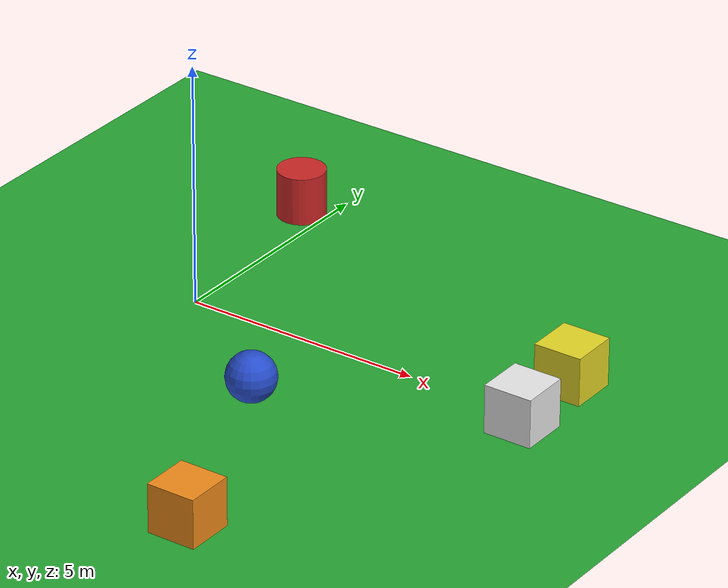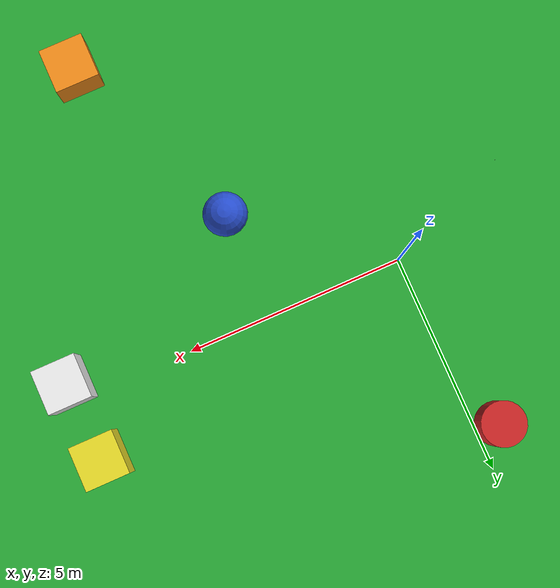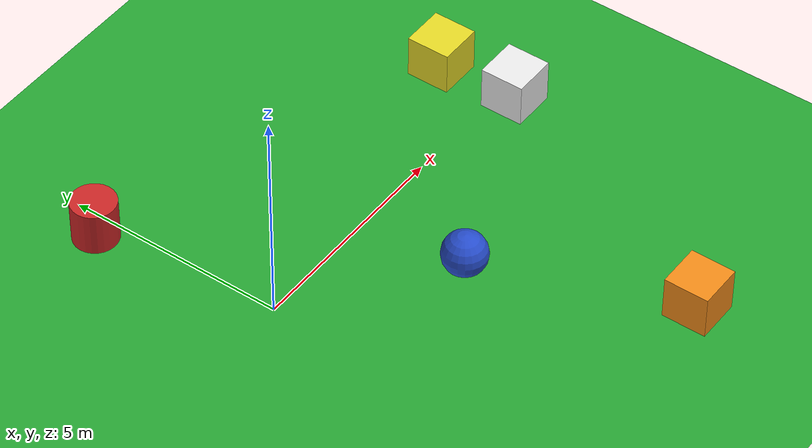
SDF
<sdf version="1.6">
 <world name="default">
  <light name="sun" type="directional">
   <pose>0 0 10 0 -0 0</pose>
   <diffuse>0.8 0.8 0.8 1</diffuse>
   <specular>0.2 0.2 0.2 1</specular>
   <attenuation>
    <range>1000</range>
    <constant>0.9</constant>
    <linear>0.01</linear>
    <quadratic>0.001</quadratic>
   </attenuation>
   <direction>-0.5 0.1 -0.9</direction>
  </light>
  <model name="ground_plane">
   <static>1</static>
   <link name="link">
    <collision name="collision">
     <geometry><plane><normal>0 0 1</normal><size>100 100</size></plane></geometry>
     <surface><friction><ode><mu>100</mu><mu2>50</mu2></ode></friction></surface>
    </collision>
    <visual name="visual">
     <cast_shadows>0</cast_shadows>
     <geometry><plane><normal>0 0 1</normal><size>100 100</size></plane></geometry>
     <material>
      <script><uri>file://media/materials/scripts/gazebo.material</uri><name>Gazebo/GreenTransparent</name></script>
     </material>
    </visual>
   </link>
  </model>
  <gravity>0 0 -9.8</gravity>
  <magnetic_field>6e-06 2.3e-05 -4.2e-05</magnetic_field>
  <atmosphere type="adiabatic"/>
  <physics name="default_physics" default="0" type="ode">
   <max_step_size>0.001</max_step_size>
   <real_time_factor>1</real_time_factor>
   <real_time_update_rate>1000</real_time_update_rate>
  </physics>
  <scene><ambient>0.4 0.4 0.4 1</ambient><background>0.7 0.7 0.7 1</background><shadows>1</shadows></scene>
  <spherical_coordinates>
   <surface_model>EARTH_WGS84</surface_model>
   <latitude_deg>0</latitude_deg>
   <longitude_deg>0</longitude_deg>
   <elevation>0</elevation>
   <heading_deg>0</heading_deg>
  </spherical_coordinates>
  <model name="unit_box">
   <pose>7.7656 -0.417065 0.499995 1e-05 -0 0</pose>
   <link name="link">
    <inertial>
     <mass>1</mass>
     <inertia>
      <ixx>0.166667</ixx>
      <ixy>0</ixy>
      <ixz>0</ixz>
      <iyy>0.166667</iyy>
      <iyz>0</iyz>
      <izz>0.166667</izz>
     </inertia>
    </inertial>
    <collision name="collision"><geometry><box><size>1 1 1</size></box></geometry></collision>
    <visual name="visual">
     <geometry><box><size>1 1 1</size></box></geometry>
     <material>
      <script><name>Gazebo/White</name><uri>file://media/materials/scripts/gazebo.material</uri></script>
     </material>
    </visual>
   </link>
  </model>
  <model name="unit_sphere">
   <pose>3.10555 -2.42286 0.5 0 -0 0</pose>
   <link name="link">
    <inertial>
     <mass>1</mass>
     <inertia><ixx>0.1</ixx><ixy>0</ixy><ixz>0</ixz><iyy>0.1</iyy><iyz>0</iyz><izz>0.1</izz></inertia>
    </inertial>
    <collision name="collision"><geometry><sphere><radius>0.5</radius></sphere></geometry></collision>
    <visual name="visual">
     <geometry><sphere><radius>0.5</radius></sphere></geometry>
     <material>
      <script><name>Gazebo/Blue</name><uri>file://media/materials/scripts/gazebo.material</uri></script>
     </material>
    </visual>
   </link>
  </model>
  <model name="unit_cylinder">
   <pose>-0.485612 4.15169 0.499998 3e-06 -3e-06 0</pose>
   <link name="link">
    <inertial>
     <mass>1</mass>
     <inertia><ixx>0.145833</ixx><ixy>0</ixy><ixz>0</ixz><iyy>0.145833</iyy><iyz>0</iyz><izz>0.125</izz></inertia>
    </inertial>
    <collision name="collision">
     <geometry><cylinder><radius>0.5</radius><length>1</length></cylinder></geometry>
    </collision>
    <visual name="visual">
     <geometry><cylinder><radius>0.5</radius><length>1</length></cylinder></geometry>
     <material>
      <script><name>Gazebo/Red</name><uri>file://media/materials/scripts/gazebo.material</uri></script>
     </material>
    </visual>
   </link>
  </model>
  <model name="unit_box_0">
   <pose>4.90347 -6.7771 0.499995 1e-05 -0 0</pose>
   <link name="link">
    <inertial>
     <mass>1</mass>
     <inertia>
      <ixx>0.166667</ixx>
      <ixy>0</ixy>
      <ixz>0</ixz>
      <iyy>0.166667</iyy>
      <iyz>0</iyz>
      <izz>0.166667</izz>
     </inertia>
    </inertial>
    <collision name="collision"><geometry><box><size>1 1 1</size></box></geometry></collision>
    <visual name="visual">
     <geometry><box><size>1 1 1</size></box></geometry>
     <material>
      <script><name>Gazebo/Orange</name><uri>file://media/materials/scripts/gazebo.material</uri></script>
     </material>
    </visual>
   </link>
  </model>
  <model name="unit_box_1">
   <pose>7.65972 1.39101 0.5 0 -0 0</pose>
   <link name="link">
    <inertial>
     <mass>1</mass>
     <inertia>
      <ixx>0.166667</ixx>
      <ixy>0</ixy>
      <ixz>0</ixz>
      <iyy>0.166667</iyy>
      <iyz>0</iyz>
      <izz>0.166667</izz>
     </inertia>
    </inertial>
    <collision name="collision"><geometry><box><size>1 1 1</size></box></geometry></collision>
    <visual name="visual">
     <geometry><box><size>1 1 1</size></box></geometry>
     <material>
      <script><name>Gazebo/Yellow</name><uri>file://media/materials/scripts/gazebo.material</uri></script>
     </material>
    </visual>
   </link>
  </model>
  <model name="ball_bearing">
   <link name="link">
    <pose>0 0 0.003 0 -0 0</pose>
    <inertial>
     <mass>0.0011</mass>
     <inertia>
      <ixx>3.96e-09</ixx>
      <ixy>0</ixy>
      <ixz>0</ixz>
      <iyy>3.96e-09</iyy>
      <iyz>0</iyz>
      <izz>3.96e-09</izz>
     </inertia>
    </inertial>
    <collision name="collision">
     <geometry><sphere><radius>0.003</radius></sphere></geometry>
     <surface>
      <contact>
       <poissons_ratio>0.305</poissons_ratio>
       <elastic_modulus>2e+11</elastic_modulus>
       <ode><kp>100000</kp><kd>100</kd><max_vel>100</max_vel><min_depth>0.001</min_depth></ode>
      </contact>
      <friction>
       <torsional>
        <coefficient>1</coefficient>
        <use_patch_radius>0</use_patch_radius>
        <surface_radius>0.01</surface_radius>
       </torsional>
      </friction>
     </surface>
    </collision>
    <visual name="visual">
     <geometry><sphere><radius>0.003</radius></sphere></geometry>
     <material>
      <script><uri>file://media/materials/scripts/gazebo.material</uri><name>Gazebo/Grey</name></script>
     </material>
    </visual>
    <velocity_decay><linear>0</linear><angular>0.005</angular></velocity_decay>
   </link>
   <pose>-2.91647 -1.17973 -0.000361 0 -0 0</pose>
  </model>
 </world>
</sdf>
